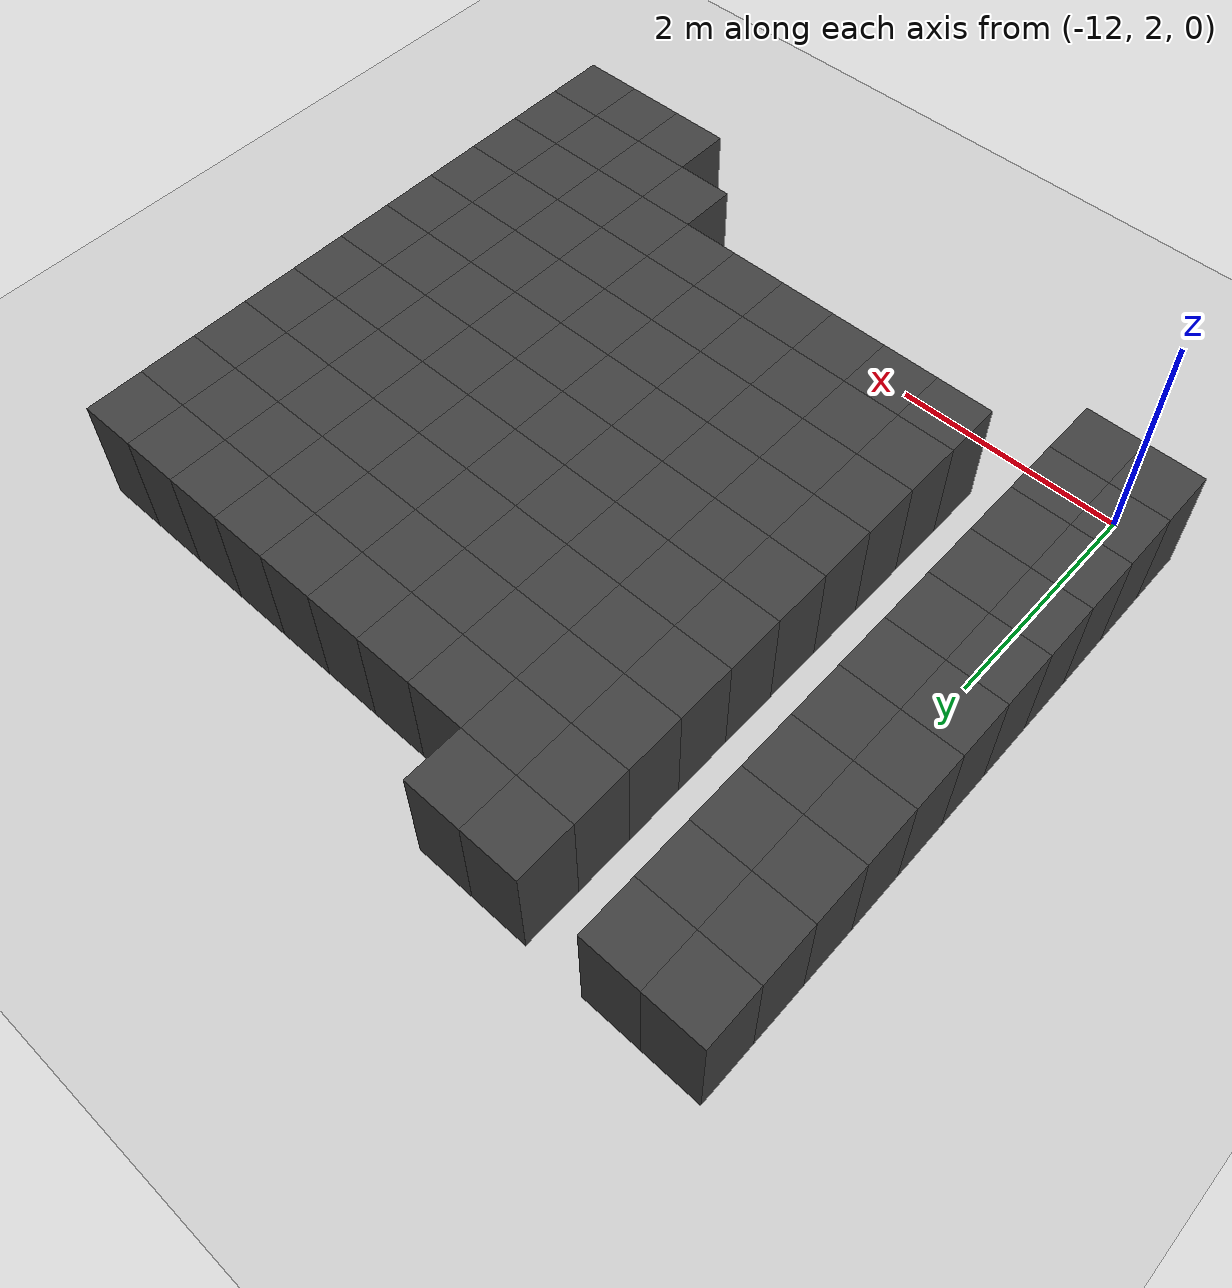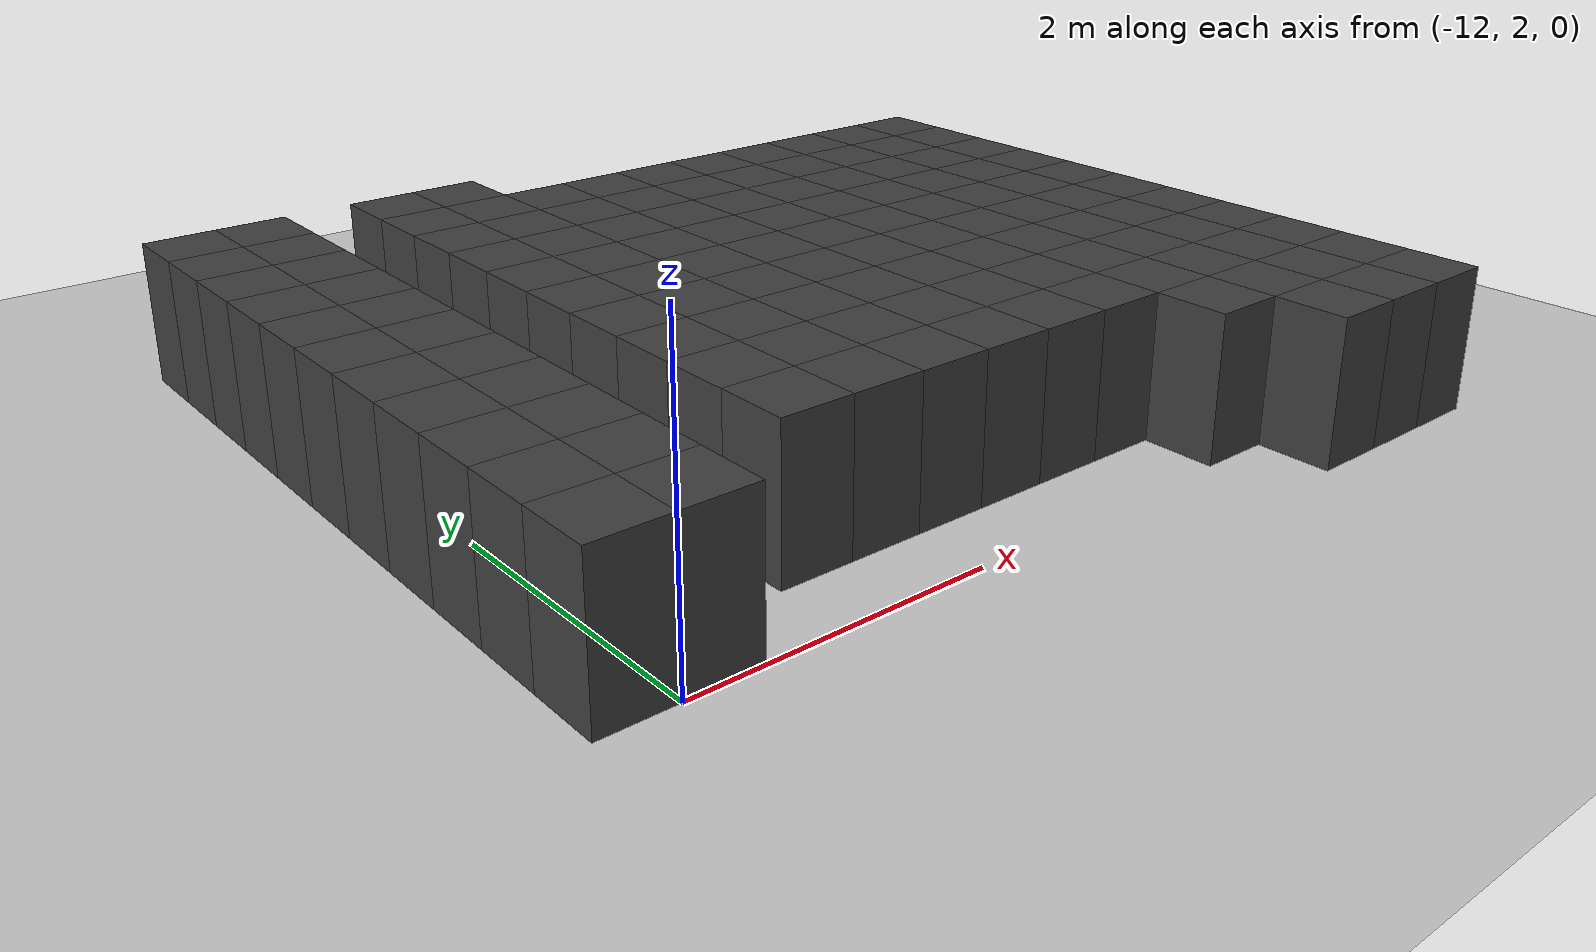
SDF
<sdf version="1.7">
 <world name="map_12885">
  <model name="ground_plane">
   <static>true</static>
   <link name="link">
    <collision name="collision">
     <geometry><plane><normal>0 0 1</normal><size>200 200</size></plane></geometry>
    </collision>
    <visual name="visual">
     <geometry><plane><normal>0 0 1</normal><size>200 200</size></plane></geometry>
     <material><ambient>0.8 0.8 0.8 1</ambient><diffuse>0.8 0.8 0.8 1</diffuse></material>
    </visual>
   </link>
  </model>
  <model name="maze_environment">
   <static>true</static>
   <link name="wall_468">
    <pose>-12.250 7.250 0.500 0 0 0</pose>
    <collision name="col"><geometry><box><size>0.5 0.5 1.0</size></box></geometry></collision>
    <visual name="vis">
     <geometry><box><size>0.5 0.5 1.0</size></box></geometry>
     <material><ambient>0.15 0.15 0.15 1</ambient><diffuse>0.25 0.25 0.25 1</diffuse></material>
    </visual>
   </link>
   <link name="wall_469">
    <pose>-11.750 7.250 0.500 0 0 0</pose>
    <collision name="col"><geometry><box><size>0.5 0.5 1.0</size></box></geometry></collision>
    <visual name="vis">
     <geometry><box><size>0.5 0.5 1.0</size></box></geometry>
     <material><ambient>0.15 0.15 0.15 1</ambient><diffuse>0.25 0.25 0.25 1</diffuse></material>
    </visual>
   </link>
   <link name="wall_470">
    <pose>-10.750 7.250 0.500 0 0 0</pose>
    <collision name="col"><geometry><box><size>0.5 0.5 1.0</size></box></geometry></collision>
    <visual name="vis">
     <geometry><box><size>0.5 0.5 1.0</size></box></geometry>
     <material><ambient>0.15 0.15 0.15 1</ambient><diffuse>0.25 0.25 0.25 1</diffuse></material>
    </visual>
   </link>
   <link name="wall_471">
    <pose>-10.250 7.250 0.500 0 0 0</pose>
    <collision name="col"><geometry><box><size>0.5 0.5 1.0</size></box></geometry></collision>
    <visual name="vis">
     <geometry><box><size>0.5 0.5 1.0</size></box></geometry>
     <material><ambient>0.15 0.15 0.15 1</ambient><diffuse>0.25 0.25 0.25 1</diffuse></material>
    </visual>
   </link>
   <link name="wall_504">
    <pose>-12.250 6.750 0.500 0 0 0</pose>
    <collision name="col"><geometry><box><size>0.5 0.5 1.0</size></box></geometry></collision>
    <visual name="vis">
     <geometry><box><size>0.5 0.5 1.0</size></box></geometry>
     <material><ambient>0.15 0.15 0.15 1</ambient><diffuse>0.25 0.25 0.25 1</diffuse></material>
    </visual>
   </link>
   <link name="wall_505">
    <pose>-11.750 6.750 0.500 0 0 0</pose>
    <collision name="col"><geometry><box><size>0.5 0.5 1.0</size></box></geometry></collision>
    <visual name="vis">
     <geometry><box><size>0.5 0.5 1.0</size></box></geometry>
     <material><ambient>0.15 0.15 0.15 1</ambient><diffuse>0.25 0.25 0.25 1</diffuse></material>
    </visual>
   </link>
   <link name="wall_506">
    <pose>-10.750 6.750 0.500 0 0 0</pose>
    <collision name="col"><geometry><box><size>0.5 0.5 1.0</size></box></geometry></collision>
    <visual name="vis">
     <geometry><box><size>0.5 0.5 1.0</size></box></geometry>
     <material><ambient>0.15 0.15 0.15 1</ambient><diffuse>0.25 0.25 0.25 1</diffuse></material>
    </visual>
   </link>
   <link name="wall_507">
    <pose>-10.250 6.750 0.500 0 0 0</pose>
    <collision name="col"><geometry><box><size>0.5 0.5 1.0</size></box></geometry></collision>
    <visual name="vis">
     <geometry><box><size>0.5 0.5 1.0</size></box></geometry>
     <material><ambient>0.15 0.15 0.15 1</ambient><diffuse>0.25 0.25 0.25 1</diffuse></material>
    </visual>
   </link>
   <link name="wall_508">
    <pose>-9.750 6.750 0.500 0 0 0</pose>
    <collision name="col"><geometry><box><size>0.5 0.5 1.0</size></box></geometry></collision>
    <visual name="vis">
     <geometry><box><size>0.5 0.5 1.0</size></box></geometry>
     <material><ambient>0.15 0.15 0.15 1</ambient><diffuse>0.25 0.25 0.25 1</diffuse></material>
    </visual>
   </link>
   <link name="wall_509">
    <pose>-9.250 6.750 0.500 0 0 0</pose>
    <collision name="col"><geometry><box><size>0.5 0.5 1.0</size></box></geometry></collision>
    <visual name="vis">
     <geometry><box><size>0.5 0.5 1.0</size></box></geometry>
     <material><ambient>0.15 0.15 0.15 1</ambient><diffuse>0.25 0.25 0.25 1</diffuse></material>
    </visual>
   </link>
   <link name="wall_510">
    <pose>-8.750 6.750 0.500 0 0 0</pose>
    <collision name="col"><geometry><box><size>0.5 0.5 1.0</size></box></geometry></collision>
    <visual name="vis">
     <geometry><box><size>0.5 0.5 1.0</size></box></geometry>
     <material><ambient>0.15 0.15 0.15 1</ambient><diffuse>0.25 0.25 0.25 1</diffuse></material>
    </visual>
   </link>
   <link name="wall_511">
    <pose>-8.250 6.750 0.500 0 0 0</pose>
    <collision name="col"><geometry><box><size>0.5 0.5 1.0</size></box></geometry></collision>
    <visual name="vis">
     <geometry><box><size>0.5 0.5 1.0</size></box></geometry>
     <material><ambient>0.15 0.15 0.15 1</ambient><diffuse>0.25 0.25 0.25 1</diffuse></material>
    </visual>
   </link>
   <link name="wall_512">
    <pose>-7.750 6.750 0.500 0 0 0</pose>
    <collision name="col"><geometry><box><size>0.5 0.5 1.0</size></box></geometry></collision>
    <visual name="vis">
     <geometry><box><size>0.5 0.5 1.0</size></box></geometry>
     <material><ambient>0.15 0.15 0.15 1</ambient><diffuse>0.25 0.25 0.25 1</diffuse></material>
    </visual>
   </link>
   <link name="wall_513">
    <pose>-7.250 6.750 0.500 0 0 0</pose>
    <collision name="col"><geometry><box><size>0.5 0.5 1.0</size></box></geometry></collision>
    <visual name="vis">
     <geometry><box><size>0.5 0.5 1.0</size></box></geometry>
     <material><ambient>0.15 0.15 0.15 1</ambient><diffuse>0.25 0.25 0.25 1</diffuse></material>
    </visual>
   </link>
   <link name="wall_514">
    <pose>-6.750 6.750 0.500 0 0 0</pose>
    <collision name="col"><geometry><box><size>0.5 0.5 1.0</size></box></geometry></collision>
    <visual name="vis">
     <geometry><box><size>0.5 0.5 1.0</size></box></geometry>
     <material><ambient>0.15 0.15 0.15 1</ambient><diffuse>0.25 0.25 0.25 1</diffuse></material>
    </visual>
   </link>
   <link name="wall_515">
    <pose>-6.250 6.750 0.500 0 0 0</pose>
    <collision name="col"><geometry><box><size>0.5 0.5 1.0</size></box></geometry></collision>
    <visual name="vis">
     <geometry><box><size>0.5 0.5 1.0</size></box></geometry>
     <material><ambient>0.15 0.15 0.15 1</ambient><diffuse>0.25 0.25 0.25 1</diffuse></material>
    </visual>
   </link>
   <link name="wall_538">
    <pose>-12.250 6.250 0.500 0 0 0</pose>
    <collision name="col"><geometry><box><size>0.5 0.5 1.0</size></box></geometry></collision>
    <visual name="vis">
     <geometry><box><size>0.5 0.5 1.0</size></box></geometry>
     <material><ambient>0.15 0.15 0.15 1</ambient><diffuse>0.25 0.25 0.25 1</diffuse></material>
    </visual>
   </link>
   <link name="wall_539">
    <pose>-11.750 6.250 0.500 0 0 0</pose>
    <collision name="col"><geometry><box><size>0.5 0.5 1.0</size></box></geometry></collision>
    <visual name="vis">
     <geometry><box><size>0.5 0.5 1.0</size></box></geometry>
     <material><ambient>0.15 0.15 0.15 1</ambient><diffuse>0.25 0.25 0.25 1</diffuse></material>
    </visual>
   </link>
   <link name="wall_540">
    <pose>-10.750 6.250 0.500 0 0 0</pose>
    <collision name="col"><geometry><box><size>0.5 0.5 1.0</size></box></geometry></collision>
    <visual name="vis">
     <geometry><box><size>0.5 0.5 1.0</size></box></geometry>
     <material><ambient>0.15 0.15 0.15 1</ambient><diffuse>0.25 0.25 0.25 1</diffuse></material>
    </visual>
   </link>
   <link name="wall_541">
    <pose>-10.250 6.250 0.500 0 0 0</pose>
    <collision name="col"><geometry><box><size>0.5 0.5 1.0</size></box></geometry></collision>
    <visual name="vis">
     <geometry><box><size>0.5 0.5 1.0</size></box></geometry>
     <material><ambient>0.15 0.15 0.15 1</ambient><diffuse>0.25 0.25 0.25 1</diffuse></material>
    </visual>
   </link>
   <link name="wall_542">
    <pose>-9.750 6.250 0.500 0 0 0</pose>
    <collision name="col"><geometry><box><size>0.5 0.5 1.0</size></box></geometry></collision>
    <visual name="vis">
     <geometry><box><size>0.5 0.5 1.0</size></box></geometry>
     <material><ambient>0.15 0.15 0.15 1</ambient><diffuse>0.25 0.25 0.25 1</diffuse></material>
    </visual>
   </link>
   <link name="wall_543">
    <pose>-9.250 6.250 0.500 0 0 0</pose>
    <collision name="col"><geometry><box><size>0.5 0.5 1.0</size></box></geometry></collision>
    <visual name="vis">
     <geometry><box><size>0.5 0.5 1.0</size></box></geometry>
     <material><ambient>0.15 0.15 0.15 1</ambient><diffuse>0.25 0.25 0.25 1</diffuse></material>
    </visual>
   </link>
   <link name="wall_544">
    <pose>-8.750 6.250 0.500 0 0 0</pose>
    <collision name="col"><geometry><box><size>0.5 0.5 1.0</size></box></geometry></collision>
    <visual name="vis">
     <geometry><box><size>0.5 0.5 1.0</size></box></geometry>
     <material><ambient>0.15 0.15 0.15 1</ambient><diffuse>0.25 0.25 0.25 1</diffuse></material>
    </visual>
   </link>
   <link name="wall_545">
    <pose>-8.250 6.250 0.500 0 0 0</pose>
    <collision name="col"><geometry><box><size>0.5 0.5 1.0</size></box></geometry></collision>
    <visual name="vis">
     <geometry><box><size>0.5 0.5 1.0</size></box></geometry>
     <material><ambient>0.15 0.15 0.15 1</ambient><diffuse>0.25 0.25 0.25 1</diffuse></material>
    </visual>
   </link>
   <link name="wall_546">
    <pose>-7.750 6.250 0.500 0 0 0</pose>
    <collision name="col"><geometry><box><size>0.5 0.5 1.0</size></box></geometry></collision>
    <visual name="vis">
     <geometry><box><size>0.5 0.5 1.0</size></box></geometry>
     <material><ambient>0.15 0.15 0.15 1</ambient><diffuse>0.25 0.25 0.25 1</diffuse></material>
    </visual>
   </link>
   <link name="wall_547">
    <pose>-7.250 6.250 0.500 0 0 0</pose>
    <collision name="col"><geometry><box><size>0.5 0.5 1.0</size></box></geometry></collision>
    <visual name="vis">
     <geometry><box><size>0.5 0.5 1.0</size></box></geometry>
     <material><ambient>0.15 0.15 0.15 1</ambient><diffuse>0.25 0.25 0.25 1</diffuse></material>
    </visual>
   </link>
   <link name="wall_548">
    <pose>-6.750 6.250 0.500 0 0 0</pose>
    <collision name="col"><geometry><box><size>0.5 0.5 1.0</size></box></geometry></collision>
    <visual name="vis">
     <geometry><box><size>0.5 0.5 1.0</size></box></geometry>
     <material><ambient>0.15 0.15 0.15 1</ambient><diffuse>0.25 0.25 0.25 1</diffuse></material>
    </visual>
   </link>
   <link name="wall_549">
    <pose>-6.250 6.250 0.500 0 0 0</pose>
    <collision name="col"><geometry><box><size>0.5 0.5 1.0</size></box></geometry></collision>
    <visual name="vis">
     <geometry><box><size>0.5 0.5 1.0</size></box></geometry>
     <material><ambient>0.15 0.15 0.15 1</ambient><diffuse>0.25 0.25 0.25 1</diffuse></material>
    </visual>
   </link>
   <link name="wall_570">
    <pose>-12.250 5.750 0.500 0 0 0</pose>
    <collision name="col"><geometry><box><size>0.5 0.5 1.0</size></box></geometry></collision>
    <visual name="vis">
     <geometry><box><size>0.5 0.5 1.0</size></box></geometry>
     <material><ambient>0.15 0.15 0.15 1</ambient><diffuse>0.25 0.25 0.25 1</diffuse></material>
    </visual>
   </link>
   <link name="wall_571">
    <pose>-11.750 5.750 0.500 0 0 0</pose>
    <collision name="col"><geometry><box><size>0.5 0.5 1.0</size></box></geometry></collision>
    <visual name="vis">
     <geometry><box><size>0.5 0.5 1.0</size></box></geometry>
     <material><ambient>0.15 0.15 0.15 1</ambient><diffuse>0.25 0.25 0.25 1</diffuse></material>
    </visual>
   </link>
   <link name="wall_572">
    <pose>-10.750 5.750 0.500 0 0 0</pose>
    <collision name="col"><geometry><box><size>0.5 0.5 1.0</size></box></geometry></collision>
    <visual name="vis">
     <geometry><box><size>0.5 0.5 1.0</size></box></geometry>
     <material><ambient>0.15 0.15 0.15 1</ambient><diffuse>0.25 0.25 0.25 1</diffuse></material>
    </visual>
   </link>
   <link name="wall_573">
    <pose>-10.250 5.750 0.500 0 0 0</pose>
    <collision name="col"><geometry><box><size>0.5 0.5 1.0</size></box></geometry></collision>
    <visual name="vis">
     <geometry><box><size>0.5 0.5 1.0</size></box></geometry>
     <material><ambient>0.15 0.15 0.15 1</ambient><diffuse>0.25 0.25 0.25 1</diffuse></material>
    </visual>
   </link>
   <link name="wall_574">
    <pose>-9.750 5.750 0.500 0 0 0</pose>
    <collision name="col"><geometry><box><size>0.5 0.5 1.0</size></box></geometry></collision>
    <visual name="vis">
     <geometry><box><size>0.5 0.5 1.0</size></box></geometry>
     <material><ambient>0.15 0.15 0.15 1</ambient><diffuse>0.25 0.25 0.25 1</diffuse></material>
    </visual>
   </link>
   <link name="wall_575">
    <pose>-9.250 5.750 0.500 0 0 0</pose>
    <collision name="col"><geometry><box><size>0.5 0.5 1.0</size></box></geometry></collision>
    <visual name="vis">
     <geometry><box><size>0.5 0.5 1.0</size></box></geometry>
     <material><ambient>0.15 0.15 0.15 1</ambient><diffuse>0.25 0.25 0.25 1</diffuse></material>
    </visual>
   </link>
   <link name="wall_576">
    <pose>-8.750 5.750 0.500 0 0 0</pose>
    <collision name="col"><geometry><box><size>0.5 0.5 1.0</size></box></geometry></collision>
    <visual name="vis">
     <geometry><box><size>0.5 0.5 1.0</size></box></geometry>
     <material><ambient>0.15 0.15 0.15 1</ambient><diffuse>0.25 0.25 0.25 1</diffuse></material>
    </visual>
   </link>
   <link name="wall_577">
    <pose>-8.250 5.750 0.500 0 0 0</pose>
    <collision name="col"><geometry><box><size>0.5 0.5 1.0</size></box></geometry></collision>
    <visual name="vis">
     <geometry><box><size>0.5 0.5 1.0</size></box></geometry>
     <material><ambient>0.15 0.15 0.15 1</ambient><diffuse>0.25 0.25 0.25 1</diffuse></material>
    </visual>
   </link>
   <link name="wall_578">
    <pose>-7.750 5.750 0.500 0 0 0</pose>
    <collision name="col"><geometry><box><size>0.5 0.5 1.0</size></box></geometry></collision>
    <visual name="vis">
     <geometry><box><size>0.5 0.5 1.0</size></box></geometry>
     <material><ambient>0.15 0.15 0.15 1</ambient><diffuse>0.25 0.25 0.25 1</diffuse></material>
    </visual>
   </link>
   <link name="wall_579">
    <pose>-7.250 5.750 0.500 0 0 0</pose>
    <collision name="col"><geometry><box><size>0.5 0.5 1.0</size></box></geometry></collision>
    <visual name="vis">
     <geometry><box><size>0.5 0.5 1.0</size></box></geometry>
     <material><ambient>0.15 0.15 0.15 1</ambient><diffuse>0.25 0.25 0.25 1</diffuse></material>
    </visual>
   </link>
   <link name="wall_580">
    <pose>-6.750 5.750 0.500 0 0 0</pose>
    <collision name="col"><geometry><box><size>0.5 0.5 1.0</size></box></geometry></collision>
    <visual name="vis">
     <geometry><box><size>0.5 0.5 1.0</size></box></geometry>
     <material><ambient>0.15 0.15 0.15 1</ambient><diffuse>0.25 0.25 0.25 1</diffuse></material>
    </visual>
   </link>
   <link name="wall_581">
    <pose>-6.250 5.750 0.500 0 0 0</pose>
    <collision name="col"><geometry><box><size>0.5 0.5 1.0</size></box></geometry></collision>
    <visual name="vis">
     <geometry><box><size>0.5 0.5 1.0</size></box></geometry>
     <material><ambient>0.15 0.15 0.15 1</ambient><diffuse>0.25 0.25 0.25 1</diffuse></material>
    </visual>
   </link>
   <link name="wall_602">
    <pose>-12.250 5.250 0.500 0 0 0</pose>
    <collision name="col"><geometry><box><size>0.5 0.5 1.0</size></box></geometry></collision>
    <visual name="vis">
     <geometry><box><size>0.5 0.5 1.0</size></box></geometry>
     <material><ambient>0.15 0.15 0.15 1</ambient><diffuse>0.25 0.25 0.25 1</diffuse></material>
    </visual>
   </link>
   <link name="wall_603">
    <pose>-11.750 5.250 0.500 0 0 0</pose>
    <collision name="col"><geometry><box><size>0.5 0.5 1.0</size></box></geometry></collision>
    <visual name="vis">
     <geometry><box><size>0.5 0.5 1.0</size></box></geometry>
     <material><ambient>0.15 0.15 0.15 1</ambient><diffuse>0.25 0.25 0.25 1</diffuse></material>
    </visual>
   </link>
   <link name="wall_604">
    <pose>-10.750 5.250 0.500 0 0 0</pose>
    <collision name="col"><geometry><box><size>0.5 0.5 1.0</size></box></geometry></collision>
    <visual name="vis">
     <geometry><box><size>0.5 0.5 1.0</size></box></geometry>
     <material><ambient>0.15 0.15 0.15 1</ambient><diffuse>0.25 0.25 0.25 1</diffuse></material>
    </visual>
   </link>
   <link name="wall_605">
    <pose>-10.250 5.250 0.500 0 0 0</pose>
    <collision name="col"><geometry><box><size>0.5 0.5 1.0</size></box></geometry></collision>
    <visual name="vis">
     <geometry><box><size>0.5 0.5 1.0</size></box></geometry>
     <material><ambient>0.15 0.15 0.15 1</ambient><diffuse>0.25 0.25 0.25 1</diffuse></material>
    </visual>
   </link>
   <link name="wall_606">
    <pose>-9.750 5.250 0.500 0 0 0</pose>
    <collision name="col"><geometry><box><size>0.5 0.5 1.0</size></box></geometry></collision>
    <visual name="vis">
     <geometry><box><size>0.5 0.5 1.0</size></box></geometry>
     <material><ambient>0.15 0.15 0.15 1</ambient><diffuse>0.25 0.25 0.25 1</diffuse></material>
    </visual>
   </link>
   <link name="wall_607">
    <pose>-9.250 5.250 0.500 0 0 0</pose>
    <collision name="col"><geometry><box><size>0.5 0.5 1.0</size></box></geometry></collision>
    <visual name="vis">
     <geometry><box><size>0.5 0.5 1.0</size></box></geometry>
     <material><ambient>0.15 0.15 0.15 1</ambient><diffuse>0.25 0.25 0.25 1</diffuse></material>
    </visual>
   </link>
   <link name="wall_608">
    <pose>-8.750 5.250 0.500 0 0 0</pose>
    <collision name="col"><geometry><box><size>0.5 0.5 1.0</size></box></geometry></collision>
    <visual name="vis">
     <geometry><box><size>0.5 0.5 1.0</size></box></geometry>
     <material><ambient>0.15 0.15 0.15 1</ambient><diffuse>0.25 0.25 0.25 1</diffuse></material>
    </visual>
   </link>
   <link name="wall_609">
    <pose>-8.250 5.250 0.500 0 0 0</pose>
    <collision name="col"><geometry><box><size>0.5 0.5 1.0</size></box></geometry></collision>
    <visual name="vis">
     <geometry><box><size>0.5 0.5 1.0</size></box></geometry>
     <material><ambient>0.15 0.15 0.15 1</ambient><diffuse>0.25 0.25 0.25 1</diffuse></material>
    </visual>
   </link>
   <link name="wall_610">
    <pose>-7.750 5.250 0.500 0 0 0</pose>
    <collision name="col"><geometry><box><size>0.5 0.5 1.0</size></box></geometry></collision>
    <visual name="vis">
     <geometry><box><size>0.5 0.5 1.0</size></box></geometry>
     <material><ambient>0.15 0.15 0.15 1</ambient><diffuse>0.25 0.25 0.25 1</diffuse></material>
    </visual>
   </link>
   <link name="wall_611">
    <pose>-7.250 5.250 0.500 0 0 0</pose>
    <collision name="col"><geometry><box><size>0.5 0.5 1.0</size></box></geometry></collision>
    <visual name="vis">
     <geometry><box><size>0.5 0.5 1.0</size></box></geometry>
     <material><ambient>0.15 0.15 0.15 1</ambient><diffuse>0.25 0.25 0.25 1</diffuse></material>
    </visual>
   </link>
   <link name="wall_612">
    <pose>-6.750 5.250 0.500 0 0 0</pose>
    <collision name="col"><geometry><box><size>0.5 0.5 1.0</size></box></geometry></collision>
    <visual name="vis">
     <geometry><box><size>0.5 0.5 1.0</size></box></geometry>
     <material><ambient>0.15 0.15 0.15 1</ambient><diffuse>0.25 0.25 0.25 1</diffuse></material>
    </visual>
   </link>
   <link name="wall_613">
    <pose>-6.250 5.250 0.500 0 0 0</pose>
    <collision name="col"><geometry><box><size>0.5 0.5 1.0</size></box></geometry></collision>
    <visual name="vis">
     <geometry><box><size>0.5 0.5 1.0</size></box></geometry>
     <material><ambient>0.15 0.15 0.15 1</ambient><diffuse>0.25 0.25 0.25 1</diffuse></material>
    </visual>
   </link>
   <link name="wall_643">
    <pose>-12.250 4.750 0.500 0 0 0</pose>
    <collision name="col"><geometry><box><size>0.5 0.5 1.0</size></box></geometry></collision>
    <visual name="vis">
     <geometry><box><size>0.5 0.5 1.0</size></box></geometry>
     <material><ambient>0.15 0.15 0.15 1</ambient><diffuse>0.25 0.25 0.25 1</diffuse></material>
    </visual>
   </link>
   <link name="wall_644">
    <pose>-11.750 4.750 0.500 0 0 0</pose>
    <collision name="col"><geometry><box><size>0.5 0.5 1.0</size></box></geometry></collision>
    <visual name="vis">
     <geometry><box><size>0.5 0.5 1.0</size></box></geometry>
     <material><ambient>0.15 0.15 0.15 1</ambient><diffuse>0.25 0.25 0.25 1</diffuse></material>
    </visual>
   </link>
   <link name="wall_645">
    <pose>-10.750 4.750 0.500 0 0 0</pose>
    <collision name="col"><geometry><box><size>0.5 0.5 1.0</size></box></geometry></collision>
    <visual name="vis">
     <geometry><box><size>0.5 0.5 1.0</size></box></geometry>
     <material><ambient>0.15 0.15 0.15 1</ambient><diffuse>0.25 0.25 0.25 1</diffuse></material>
    </visual>
   </link>
   <link name="wall_646">
    <pose>-10.250 4.750 0.500 0 0 0</pose>
    <collision name="col"><geometry><box><size>0.5 0.5 1.0</size></box></geometry></collision>
    <visual name="vis">
     <geometry><box><size>0.5 0.5 1.0</size></box></geometry>
     <material><ambient>0.15 0.15 0.15 1</ambient><diffuse>0.25 0.25 0.25 1</diffuse></material>
    </visual>
   </link>
   <link name="wall_647">
    <pose>-9.750 4.750 0.500 0 0 0</pose>
    <collision name="col"><geometry><box><size>0.5 0.5 1.0</size></box></geometry></collision>
    <visual name="vis">
     <geometry><box><size>0.5 0.5 1.0</size></box></geometry>
     <material><ambient>0.15 0.15 0.15 1</ambient><diffuse>0.25 0.25 0.25 1</diffuse></material>
    </visual>
   </link>
   <link name="wall_648">
    <pose>-9.250 4.750 0.500 0 0 0</pose>
    <collision name="col"><geometry><box><size>0.5 0.5 1.0</size></box></geometry></collision>
    <visual name="vis">
     <geometry><box><size>0.5 0.5 1.0</size></box></geometry>
     <material><ambient>0.15 0.15 0.15 1</ambient><diffuse>0.25 0.25 0.25 1</diffuse></material>
    </visual>
   </link>
   <link name="wall_649">
    <pose>-8.750 4.750 0.500 0 0 0</pose>
    <collision name="col"><geometry><box><size>0.5 0.5 1.0</size></box></geometry></collision>
    <visual name="vis">
     <geometry><box><size>0.5 0.5 1.0</size></box></geometry>
     <material><ambient>0.15 0.15 0.15 1</ambient><diffuse>0.25 0.25 0.25 1</diffuse></material>
    </visual>
   </link>
   <link name="wall_650">
    <pose>-8.250 4.750 0.500 0 0 0</pose>
    <collision name="col"><geometry><box><size>0.5 0.5 1.0</size></box></geometry></collision>
    <visual name="vis">
     <geometry><box><size>0.5 0.5 1.0</size></box></geometry>
     <material><ambient>0.15 0.15 0.15 1</ambient><diffuse>0.25 0.25 0.25 1</diffuse></material>
    </visual>
   </link>
   <link name="wall_651">
    <pose>-7.750 4.750 0.500 0 0 0</pose>
    <collision name="col"><geometry><box><size>0.5 0.5 1.0</size></box></geometry></collision>
    <visual name="vis">
     <geometry><box><size>0.5 0.5 1.0</size></box></geometry>
     <material><ambient>0.15 0.15 0.15 1</ambient><diffuse>0.25 0.25 0.25 1</diffuse></material>
    </visual>
   </link>
   <link name="wall_652">
    <pose>-7.250 4.750 0.500 0 0 0</pose>
    <collision name="col"><geometry><box><size>0.5 0.5 1.0</size></box></geometry></collision>
    <visual name="vis">
     <geometry><box><size>0.5 0.5 1.0</size></box></geometry>
     <material><ambient>0.15 0.15 0.15 1</ambient><diffuse>0.25 0.25 0.25 1</diffuse></material>
    </visual>
   </link>
   <link name="wall_653">
    <pose>-6.750 4.750 0.500 0 0 0</pose>
    <collision name="col"><geometry><box><size>0.5 0.5 1.0</size></box></geometry></collision>
    <visual name="vis">
     <geometry><box><size>0.5 0.5 1.0</size></box></geometry>
     <material><ambient>0.15 0.15 0.15 1</ambient><diffuse>0.25 0.25 0.25 1</diffuse></material>
    </visual>
   </link>
   <link name="wall_654">
    <pose>-6.250 4.750 0.500 0 0 0</pose>
    <collision name="col"><geometry><box><size>0.5 0.5 1.0</size></box></geometry></collision>
    <visual name="vis">
     <geometry><box><size>0.5 0.5 1.0</size></box></geometry>
     <material><ambient>0.15 0.15 0.15 1</ambient><diffuse>0.25 0.25 0.25 1</diffuse></material>
    </visual>
   </link>
   <link name="wall_684">
    <pose>-12.250 4.250 0.500 0 0 0</pose>
    <collision name="col"><geometry><box><size>0.5 0.5 1.0</size></box></geometry></collision>
    <visual name="vis">
     <geometry><box><size>0.5 0.5 1.0</size></box></geometry>
     <material><ambient>0.15 0.15 0.15 1</ambient><diffuse>0.25 0.25 0.25 1</diffuse></material>
    </visual>
   </link>
   <link name="wall_685">
    <pose>-11.750 4.250 0.500 0 0 0</pose>
    <collision name="col"><geometry><box><size>0.5 0.5 1.0</size></box></geometry></collision>
    <visual name="vis">
     <geometry><box><size>0.5 0.5 1.0</size></box></geometry>
     <material><ambient>0.15 0.15 0.15 1</ambient><diffuse>0.25 0.25 0.25 1</diffuse></material>
    </visual>
   </link>
   <link name="wall_686">
    <pose>-10.750 4.250 0.500 0 0 0</pose>
    <collision name="col"><geometry><box><size>0.5 0.5 1.0</size></box></geometry></collision>
    <visual name="vis">
     <geometry><box><size>0.5 0.5 1.0</size></box></geometry>
     <material><ambient>0.15 0.15 0.15 1</ambient><diffuse>0.25 0.25 0.25 1</diffuse></material>
    </visual>
   </link>
   <link name="wall_687">
    <pose>-10.250 4.250 0.500 0 0 0</pose>
    <collision name="col"><geometry><box><size>0.5 0.5 1.0</size></box></geometry></collision>
    <visual name="vis">
     <geometry><box><size>0.5 0.5 1.0</size></box></geometry>
     <material><ambient>0.15 0.15 0.15 1</ambient><diffuse>0.25 0.25 0.25 1</diffuse></material>
    </visual>
   </link>
   <link name="wall_688">
    <pose>-9.750 4.250 0.500 0 0 0</pose>
    <collision name="col"><geometry><box><size>0.5 0.5 1.0</size></box></geometry></collision>
    <visual name="vis">
     <geometry><box><size>0.5 0.5 1.0</size></box></geometry>
     <material><ambient>0.15 0.15 0.15 1</ambient><diffuse>0.25 0.25 0.25 1</diffuse></material>
    </visual>
   </link>
   <link name="wall_689">
    <pose>-9.250 4.250 0.500 0 0 0</pose>
    <collision name="col"><geometry><box><size>0.5 0.5 1.0</size></box></geometry></collision>
    <visual name="vis">
     <geometry><box><size>0.5 0.5 1.0</size></box></geometry>
     <material><ambient>0.15 0.15 0.15 1</ambient><diffuse>0.25 0.25 0.25 1</diffuse></material>
    </visual>
   </link>
   <link name="wall_690">
    <pose>-8.750 4.250 0.500 0 0 0</pose>
    <collision name="col"><geometry><box><size>0.5 0.5 1.0</size></box></geometry></collision>
    <visual name="vis">
     <geometry><box><size>0.5 0.5 1.0</size></box></geometry>
     <material><ambient>0.15 0.15 0.15 1</ambient><diffuse>0.25 0.25 0.25 1</diffuse></material>
    </visual>
   </link>
   <link name="wall_691">
    <pose>-8.250 4.250 0.500 0 0 0</pose>
    <collision name="col"><geometry><box><size>0.5 0.5 1.0</size></box></geometry></collision>
    <visual name="vis">
     <geometry><box><size>0.5 0.5 1.0</size></box></geometry>
     <material><ambient>0.15 0.15 0.15 1</ambient><diffuse>0.25 0.25 0.25 1</diffuse></material>
    </visual>
   </link>
   <link name="wall_692">
    <pose>-7.750 4.250 0.500 0 0 0</pose>
    <collision name="col"><geometry><box><size>0.5 0.5 1.0</size></box></geometry></collision>
    <visual name="vis">
     <geometry><box><size>0.5 0.5 1.0</size></box></geometry>
     <material><ambient>0.15 0.15 0.15 1</ambient><diffuse>0.25 0.25 0.25 1</diffuse></material>
    </visual>
   </link>
   <link name="wall_693">
    <pose>-7.250 4.250 0.500 0 0 0</pose>
    <collision name="col"><geometry><box><size>0.5 0.5 1.0</size></box></geometry></collision>
    <visual name="vis">
     <geometry><box><size>0.5 0.5 1.0</size></box></geometry>
     <material><ambient>0.15 0.15 0.15 1</ambient><diffuse>0.25 0.25 0.25 1</diffuse></material>
    </visual>
   </link>
   <link name="wall_694">
    <pose>-6.750 4.250 0.500 0 0 0</pose>
    <collision name="col"><geometry><box><size>0.5 0.5 1.0</size></box></geometry></collision>
    <visual name="vis">
     <geometry><box><size>0.5 0.5 1.0</size></box></geometry>
     <material><ambient>0.15 0.15 0.15 1</ambient><diffuse>0.25 0.25 0.25 1</diffuse></material>
    </visual>
   </link>
   <link name="wall_695">
    <pose>-6.250 4.250 0.500 0 0 0</pose>
    <collision name="col"><geometry><box><size>0.5 0.5 1.0</size></box></geometry></collision>
    <visual name="vis">
     <geometry><box><size>0.5 0.5 1.0</size></box></geometry>
     <material><ambient>0.15 0.15 0.15 1</ambient><diffuse>0.25 0.25 0.25 1</diffuse></material>
    </visual>
   </link>
   <link name="wall_725">
    <pose>-12.250 3.750 0.500 0 0 0</pose>
    <collision name="col"><geometry><box><size>0.5 0.5 1.0</size></box></geometry></collision>
    <visual name="vis">
     <geometry><box><size>0.5 0.5 1.0</size></box></geometry>
     <material><ambient>0.15 0.15 0.15 1</ambient><diffuse>0.25 0.25 0.25 1</diffuse></material>
    </visual>
   </link>
   <link name="wall_726">
    <pose>-11.750 3.750 0.500 0 0 0</pose>
    <collision name="col"><geometry><box><size>0.5 0.5 1.0</size></box></geometry></collision>
    <visual name="vis">
     <geometry><box><size>0.5 0.5 1.0</size></box></geometry>
     <material><ambient>0.15 0.15 0.15 1</ambient><diffuse>0.25 0.25 0.25 1</diffuse></material>
    </visual>
   </link>
   <link name="wall_727">
    <pose>-10.750 3.750 0.500 0 0 0</pose>
    <collision name="col"><geometry><box><size>0.5 0.5 1.0</size></box></geometry></collision>
    <visual name="vis">
     <geometry><box><size>0.5 0.5 1.0</size></box></geometry>
     <material><ambient>0.15 0.15 0.15 1</ambient><diffuse>0.25 0.25 0.25 1</diffuse></material>
    </visual>
   </link>
   <link name="wall_728">
    <pose>-10.250 3.750 0.500 0 0 0</pose>
    <collision name="col"><geometry><box><size>0.5 0.5 1.0</size></box></geometry></collision>
    <visual name="vis">
     <geometry><box><size>0.5 0.5 1.0</size></box></geometry>
     <material><ambient>0.15 0.15 0.15 1</ambient><diffuse>0.25 0.25 0.25 1</diffuse></material>
    </visual>
   </link>
   <link name="wall_729">
    <pose>-9.750 3.750 0.500 0 0 0</pose>
    <collision name="col"><geometry><box><size>0.5 0.5 1.0</size></box></geometry></collision>
    <visual name="vis">
     <geometry><box><size>0.5 0.5 1.0</size></box></geometry>
     <material><ambient>0.15 0.15 0.15 1</ambient><diffuse>0.25 0.25 0.25 1</diffuse></material>
    </visual>
   </link>
   <link name="wall_730">
    <pose>-9.250 3.750 0.500 0 0 0</pose>
    <collision name="col"><geometry><box><size>0.5 0.5 1.0</size></box></geometry></collision>
    <visual name="vis">
     <geometry><box><size>0.5 0.5 1.0</size></box></geometry>
     <material><ambient>0.15 0.15 0.15 1</ambient><diffuse>0.25 0.25 0.25 1</diffuse></material>
    </visual>
   </link>
   <link name="wall_731">
    <pose>-8.750 3.750 0.500 0 0 0</pose>
    <collision name="col"><geometry><box><size>0.5 0.5 1.0</size></box></geometry></collision>
    <visual name="vis">
     <geometry><box><size>0.5 0.5 1.0</size></box></geometry>
     <material><ambient>0.15 0.15 0.15 1</ambient><diffuse>0.25 0.25 0.25 1</diffuse></material>
    </visual>
   </link>
   <link name="wall_732">
    <pose>-8.250 3.750 0.500 0 0 0</pose>
    <collision name="col"><geometry><box><size>0.5 0.5 1.0</size></box></geometry></collision>
    <visual name="vis">
     <geometry><box><size>0.5 0.5 1.0</size></box></geometry>
     <material><ambient>0.15 0.15 0.15 1</ambient><diffuse>0.25 0.25 0.25 1</diffuse></material>
    </visual>
   </link>
   <link name="wall_733">
    <pose>-7.750 3.750 0.500 0 0 0</pose>
    <collision name="col"><geometry><box><size>0.5 0.5 1.0</size></box></geometry></collision>
    <visual name="vis">
     <geometry><box><size>0.5 0.5 1.0</size></box></geometry>
     <material><ambient>0.15 0.15 0.15 1</ambient><diffuse>0.25 0.25 0.25 1</diffuse></material>
    </visual>
   </link>
   <link name="wall_734">
    <pose>-7.250 3.750 0.500 0 0 0</pose>
    <collision name="col"><geometry><box><size>0.5 0.5 1.0</size></box></geometry></collision>
    <visual name="vis">
     <geometry><box><size>0.5 0.5 1.0</size></box></geometry>
     <material><ambient>0.15 0.15 0.15 1</ambient><diffuse>0.25 0.25 0.25 1</diffuse></material>
    </visual>
   </link>
   <link name="wall_735">
    <pose>-6.750 3.750 0.500 0 0 0</pose>
    <collision name="col"><geometry><box><size>0.5 0.5 1.0</size></box></geometry></collision>
    <visual name="vis">
     <geometry><box><size>0.5 0.5 1.0</size></box></geometry>
     <material><ambient>0.15 0.15 0.15 1</ambient><diffuse>0.25 0.25 0.25 1</diffuse></material>
    </visual>
   </link>
   <link name="wall_736">
    <pose>-6.250 3.750 0.500 0 0 0</pose>
    <collision name="col"><geometry><box><size>0.5 0.5 1.0</size></box></geometry></collision>
    <visual name="vis">
     <geometry><box><size>0.5 0.5 1.0</size></box></geometry>
     <material><ambient>0.15 0.15 0.15 1</ambient><diffuse>0.25 0.25 0.25 1</diffuse></material>
    </visual>
   </link>
   <link name="wall_766">
    <pose>-12.250 3.250 0.500 0 0 0</pose>
    <collision name="col"><geometry><box><size>0.5 0.5 1.0</size></box></geometry></collision>
    <visual name="vis">
     <geometry><box><size>0.5 0.5 1.0</size></box></geometry>
     <material><ambient>0.15 0.15 0.15 1</ambient><diffuse>0.25 0.25 0.25 1</diffuse></material>
    </visual>
   </link>
   <link name="wall_767">
    <pose>-11.750 3.250 0.500 0 0 0</pose>
    <collision name="col"><geometry><box><size>0.5 0.5 1.0</size></box></geometry></collision>
    <visual name="vis">
     <geometry><box><size>0.5 0.5 1.0</size></box></geometry>
     <material><ambient>0.15 0.15 0.15 1</ambient><diffuse>0.25 0.25 0.25 1</diffuse></material>
    </visual>
   </link>
   <link name="wall_768">
    <pose>-10.750 3.250 0.500 0 0 0</pose>
    <collision name="col"><geometry><box><size>0.5 0.5 1.0</size></box></geometry></collision>
    <visual name="vis">
     <geometry><box><size>0.5 0.5 1.0</size></box></geometry>
     <material><ambient>0.15 0.15 0.15 1</ambient><diffuse>0.25 0.25 0.25 1</diffuse></material>
    </visual>
   </link>
   <link name="wall_769">
    <pose>-10.250 3.250 0.500 0 0 0</pose>
    <collision name="col"><geometry><box><size>0.5 0.5 1.0</size></box></geometry></collision>
    <visual name="vis">
     <geometry><box><size>0.5 0.5 1.0</size></box></geometry>
     <material><ambient>0.15 0.15 0.15 1</ambient><diffuse>0.25 0.25 0.25 1</diffuse></material>
    </visual>
   </link>
   <link name="wall_770">
    <pose>-9.750 3.250 0.500 0 0 0</pose>
    <collision name="col"><geometry><box><size>0.5 0.5 1.0</size></box></geometry></collision>
    <visual name="vis">
     <geometry><box><size>0.5 0.5 1.0</size></box></geometry>
     <material><ambient>0.15 0.15 0.15 1</ambient><diffuse>0.25 0.25 0.25 1</diffuse></material>
    </visual>
   </link>
   <link name="wall_771">
    <pose>-9.250 3.250 0.500 0 0 0</pose>
    <collision name="col"><geometry><box><size>0.5 0.5 1.0</size></box></geometry></collision>
    <visual name="vis">
     <geometry><box><size>0.5 0.5 1.0</size></box></geometry>
     <material><ambient>0.15 0.15 0.15 1</ambient><diffuse>0.25 0.25 0.25 1</diffuse></material>
    </visual>
   </link>
   <link name="wall_772">
    <pose>-8.750 3.250 0.500 0 0 0</pose>
    <collision name="col"><geometry><box><size>0.5 0.5 1.0</size></box></geometry></collision>
    <visual name="vis">
     <geometry><box><size>0.5 0.5 1.0</size></box></geometry>
     <material><ambient>0.15 0.15 0.15 1</ambient><diffuse>0.25 0.25 0.25 1</diffuse></material>
    </visual>
   </link>
   <link name="wall_773">
    <pose>-8.250 3.250 0.500 0 0 0</pose>
    <collision name="col"><geometry><box><size>0.5 0.5 1.0</size></box></geometry></collision>
    <visual name="vis">
     <geometry><box><size>0.5 0.5 1.0</size></box></geometry>
     <material><ambient>0.15 0.15 0.15 1</ambient><diffuse>0.25 0.25 0.25 1</diffuse></material>
    </visual>
   </link>
   <link name="wall_774">
    <pose>-7.750 3.250 0.500 0 0 0</pose>
    <collision name="col"><geometry><box><size>0.5 0.5 1.0</size></box></geometry></collision>
    <visual name="vis">
     <geometry><box><size>0.5 0.5 1.0</size></box></geometry>
     <material><ambient>0.15 0.15 0.15 1</ambient><diffuse>0.25 0.25 0.25 1</diffuse></material>
    </visual>
   </link>
   <link name="wall_775">
    <pose>-7.250 3.250 0.500 0 0 0</pose>
    <collision name="col"><geometry><box><size>0.5 0.5 1.0</size></box></geometry></collision>
    <visual name="vis">
     <geometry><box><size>0.5 0.5 1.0</size></box></geometry>
     <material><ambient>0.15 0.15 0.15 1</ambient><diffuse>0.25 0.25 0.25 1</diffuse></material>
    </visual>
   </link>
   <link name="wall_776">
    <pose>-6.750 3.250 0.500 0 0 0</pose>
    <collision name="col"><geometry><box><size>0.5 0.5 1.0</size></box></geometry></collision>
    <visual name="vis">
     <geometry><box><size>0.5 0.5 1.0</size></box></geometry>
     <material><ambient>0.15 0.15 0.15 1</ambient><diffuse>0.25 0.25 0.25 1</diffuse></material>
    </visual>
   </link>
   <link name="wall_777">
    <pose>-6.250 3.250 0.500 0 0 0</pose>
    <collision name="col"><geometry><box><size>0.5 0.5 1.0</size></box></geometry></collision>
    <visual name="vis">
     <geometry><box><size>0.5 0.5 1.0</size></box></geometry>
     <material><ambient>0.15 0.15 0.15 1</ambient><diffuse>0.25 0.25 0.25 1</diffuse></material>
    </visual>
   </link>
   <link name="wall_807">
    <pose>-12.250 2.750 0.500 0 0 0</pose>
    <collision name="col"><geometry><box><size>0.5 0.5 1.0</size></box></geometry></collision>
    <visual name="vis">
     <geometry><box><size>0.5 0.5 1.0</size></box></geometry>
     <material><ambient>0.15 0.15 0.15 1</ambient><diffuse>0.25 0.25 0.25 1</diffuse></material>
    </visual>
   </link>
   <link name="wall_808">
    <pose>-11.750 2.750 0.500 0 0 0</pose>
    <collision name="col"><geometry><box><size>0.5 0.5 1.0</size></box></geometry></collision>
    <visual name="vis">
     <geometry><box><size>0.5 0.5 1.0</size></box></geometry>
     <material><ambient>0.15 0.15 0.15 1</ambient><diffuse>0.25 0.25 0.25 1</diffuse></material>
    </visual>
   </link>
   <link name="wall_809">
    <pose>-10.750 2.750 0.500 0 0 0</pose>
    <collision name="col"><geometry><box><size>0.5 0.5 1.0</size></box></geometry></collision>
    <visual name="vis">
     <geometry><box><size>0.5 0.5 1.0</size></box></geometry>
     <material><ambient>0.15 0.15 0.15 1</ambient><diffuse>0.25 0.25 0.25 1</diffuse></material>
    </visual>
   </link>
   <link name="wall_810">
    <pose>-10.250 2.750 0.500 0 0 0</pose>
    <collision name="col"><geometry><box><size>0.5 0.5 1.0</size></box></geometry></collision>
    <visual name="vis">
     <geometry><box><size>0.5 0.5 1.0</size></box></geometry>
     <material><ambient>0.15 0.15 0.15 1</ambient><diffuse>0.25 0.25 0.25 1</diffuse></material>
    </visual>
   </link>
   <link name="wall_811">
    <pose>-9.750 2.750 0.500 0 0 0</pose>
    <collision name="col"><geometry><box><size>0.5 0.5 1.0</size></box></geometry></collision>
    <visual name="vis">
     <geometry><box><size>0.5 0.5 1.0</size></box></geometry>
     <material><ambient>0.15 0.15 0.15 1</ambient><diffuse>0.25 0.25 0.25 1</diffuse></material>
    </visual>
   </link>
   <link name="wall_812">
    <pose>-9.250 2.750 0.500 0 0 0</pose>
    <collision name="col"><geometry><box><size>0.5 0.5 1.0</size></box></geometry></collision>
    <visual name="vis">
     <geometry><box><size>0.5 0.5 1.0</size></box></geometry>
     <material><ambient>0.15 0.15 0.15 1</ambient><diffuse>0.25 0.25 0.25 1</diffuse></material>
    </visual>
   </link>
   <link name="wall_813">
    <pose>-8.750 2.750 0.500 0 0 0</pose>
    <collision name="col"><geometry><box><size>0.5 0.5 1.0</size></box></geometry></collision>
    <visual name="vis">
     <geometry><box><size>0.5 0.5 1.0</size></box></geometry>
     <material><ambient>0.15 0.15 0.15 1</ambient><diffuse>0.25 0.25 0.25 1</diffuse></material>
    </visual>
   </link>
   <link name="wall_814">
    <pose>-8.250 2.750 0.500 0 0 0</pose>
    <collision name="col"><geometry><box><size>0.5 0.5 1.0</size></box></geometry></collision>
    <visual name="vis">
     <geometry><box><size>0.5 0.5 1.0</size></box></geometry>
     <material><ambient>0.15 0.15 0.15 1</ambient><diffuse>0.25 0.25 0.25 1</diffuse></material>
    </visual>
   </link>
   <link name="wall_815">
    <pose>-7.750 2.750 0.500 0 0 0</pose>
    <collision name="col"><geometry><box><size>0.5 0.5 1.0</size></box></geometry></collision>
    <visual name="vis">
     <geometry><box><size>0.5 0.5 1.0</size></box></geometry>
     <material><ambient>0.15 0.15 0.15 1</ambient><diffuse>0.25 0.25 0.25 1</diffuse></material>
    </visual>
   </link>
   <link name="wall_816">
    <pose>-7.250 2.750 0.500 0 0 0</pose>
    <collision name="col"><geometry><box><size>0.5 0.5 1.0</size></box></geometry></collision>
    <visual name="vis">
     <geometry><box><size>0.5 0.5 1.0</size></box></geometry>
     <material><ambient>0.15 0.15 0.15 1</ambient><diffuse>0.25 0.25 0.25 1</diffuse></material>
    </visual>
   </link>
   <link name="wall_817">
    <pose>-6.750 2.750 0.500 0 0 0</pose>
    <collision name="col"><geometry><box><size>0.5 0.5 1.0</size></box></geometry></collision>
    <visual name="vis">
     <geometry><box><size>0.5 0.5 1.0</size></box></geometry>
     <material><ambient>0.15 0.15 0.15 1</ambient><diffuse>0.25 0.25 0.25 1</diffuse></material>
    </visual>
   </link>
   <link name="wall_818">
    <pose>-6.250 2.750 0.500 0 0 0</pose>
    <collision name="col"><geometry><box><size>0.5 0.5 1.0</size></box></geometry></collision>
    <visual name="vis">
     <geometry><box><size>0.5 0.5 1.0</size></box></geometry>
     <material><ambient>0.15 0.15 0.15 1</ambient><diffuse>0.25 0.25 0.25 1</diffuse></material>
    </visual>
   </link>
   <link name="wall_848">
    <pose>-12.250 2.250 0.500 0 0 0</pose>
    <collision name="col"><geometry><box><size>0.5 0.5 1.0</size></box></geometry></collision>
    <visual name="vis">
     <geometry><box><size>0.5 0.5 1.0</size></box></geometry>
     <material><ambient>0.15 0.15 0.15 1</ambient><diffuse>0.25 0.25 0.25 1</diffuse></material>
    </visual>
   </link>
   <link name="wall_849">
    <pose>-11.750 2.250 0.500 0 0 0</pose>
    <collision name="col"><geometry><box><size>0.5 0.5 1.0</size></box></geometry></collision>
    <visual name="vis">
     <geometry><box><size>0.5 0.5 1.0</size></box></geometry>
     <material><ambient>0.15 0.15 0.15 1</ambient><diffuse>0.25 0.25 0.25 1</diffuse></material>
    </visual>
   </link>
   <link name="wall_850">
    <pose>-7.750 2.250 0.500 0 0 0</pose>
    <collision name="col"><geometry><box><size>0.5 0.5 1.0</size></box></geometry></collision>
    <visual name="vis">
     <geometry><box><size>0.5 0.5 1.0</size></box></geometry>
     <material><ambient>0.15 0.15 0.15 1</ambient><diffuse>0.25 0.25 0.25 1</diffuse></material>
    </visual>
   </link>
   <link name="wall_851">
    <pose>-7.250 2.250 0.500 0 0 0</pose>
    <collision name="col"><geometry><box><size>0.5 0.5 1.0</size></box></geometry></collision>
    <visual name="vis">
     <geometry><box><size>0.5 0.5 1.0</size></box></geometry>
     <material><ambient>0.15 0.15 0.15 1</ambient><diffuse>0.25 0.25 0.25 1</diffuse></material>
    </visual>
   </link>
   <link name="wall_852">
    <pose>-6.750 2.250 0.500 0 0 0</pose>
    <collision name="col"><geometry><box><size>0.5 0.5 1.0</size></box></geometry></collision>
    <visual name="vis">
     <geometry><box><size>0.5 0.5 1.0</size></box></geometry>
     <material><ambient>0.15 0.15 0.15 1</ambient><diffuse>0.25 0.25 0.25 1</diffuse></material>
    </visual>
   </link>
   <link name="wall_853">
    <pose>-6.250 2.250 0.500 0 0 0</pose>
    <collision name="col"><geometry><box><size>0.5 0.5 1.0</size></box></geometry></collision>
    <visual name="vis">
     <geometry><box><size>0.5 0.5 1.0</size></box></geometry>
     <material><ambient>0.15 0.15 0.15 1</ambient><diffuse>0.25 0.25 0.25 1</diffuse></material>
    </visual>
   </link>
   <link name="wall_893">
    <pose>-7.250 1.750 0.500 0 0 0</pose>
    <collision name="col"><geometry><box><size>0.5 0.5 1.0</size></box></geometry></collision>
    <visual name="vis">
     <geometry><box><size>0.5 0.5 1.0</size></box></geometry>
     <material><ambient>0.15 0.15 0.15 1</ambient><diffuse>0.25 0.25 0.25 1</diffuse></material>
    </visual>
   </link>
   <link name="wall_894">
    <pose>-6.750 1.750 0.500 0 0 0</pose>
    <collision name="col"><geometry><box><size>0.5 0.5 1.0</size></box></geometry></collision>
    <visual name="vis">
     <geometry><box><size>0.5 0.5 1.0</size></box></geometry>
     <material><ambient>0.15 0.15 0.15 1</ambient><diffuse>0.25 0.25 0.25 1</diffuse></material>
    </visual>
   </link>
   <link name="wall_895">
    <pose>-6.250 1.750 0.500 0 0 0</pose>
    <collision name="col"><geometry><box><size>0.5 0.5 1.0</size></box></geometry></collision>
    <visual name="vis">
     <geometry><box><size>0.5 0.5 1.0</size></box></geometry>
     <material><ambient>0.15 0.15 0.15 1</ambient><diffuse>0.25 0.25 0.25 1</diffuse></material>
    </visual>
   </link>
  </model>
 </world>
</sdf>
